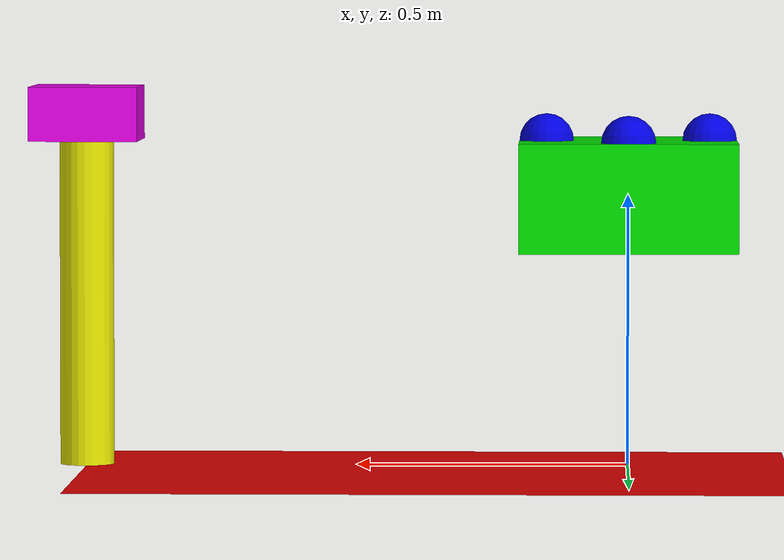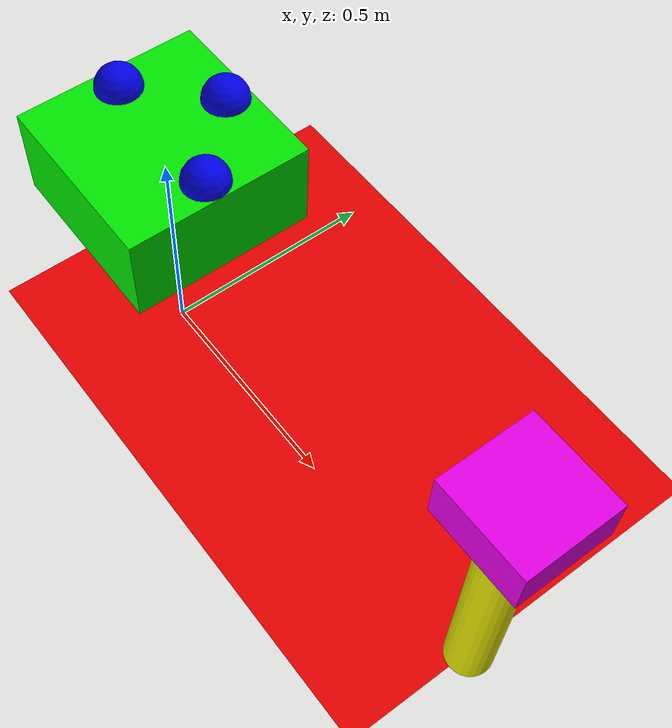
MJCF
<mujoco model="geom_tf_example">
  <compiler angle="radian"/>

  <option timestep="0.001" integrator="Euler"/>

  <extension>
    <plugin plugin="MujocoRosUtils::GeomTfPublisher">
    </plugin>
  </extension>

  <worldbody>
    <light diffuse=".5 .5 .5" pos="0 0 3" dir="0 0 -1"/>
    <geom type="plane" size="1 1 0.1" rgba=".9 0 0 1"/>

    <!-- Example body with multiple geoms -->
    <body name="robot_base" pos="0 0 0.5">
      <!-- Multiple geoms attached to this body -->
      <geom name="base_link" type="box" size="0.2 0.2 0.1" rgba="0 .9 0 1" pos="0 0 0"/>
      <geom name="sensor_1" type="sphere" size="0.05" rgba="0 0 .9 1" pos="0.15 0 0.1"/>
      <geom name="sensor_2" type="sphere" size="0.05" rgba="0 0 .9 1" pos="-0.15 0 0.1"/>
      <geom name="sensor_3" type="sphere" size="0.05" rgba="0 0 .9 1" pos="0 0.15 0.1"/>

      <freejoint/>

      <!-- Plugin instance to publish TF frames for all geoms under robot_base -->
      <plugin plugin="MujocoRosUtils::GeomTfPublisher">
        <config key="parent_body" value="robot_base"/>
        <config key="frame_id" value="world"/>
        <config key="topic_name" value="/robot/geom_tf"/>
        <config key="publish_rate" value="50.0"/>
        <config key="publish_bodies" value="true"/>
      </plugin>
    </body>

    <!-- Another example body -->
    <body name="manipulator" pos="1 0 0.3">
      <geom name="arm_link" type="cylinder" size="0.05 0.3" rgba=".9 .9 0 1" pos="0 0 0"/>
      <geom name="end_effector" type="box" size="0.1 0.1 0.05" rgba=".9 0 .9 1" pos="0 0 0.35"/>

      <freejoint/>

      <!-- Separate plugin instance for manipulator geoms -->
      <plugin plugin="MujocoRosUtils::GeomTfPublisher">
        <config key="parent_body" value="manipulator"/>
        <config key="frame_id" value="world"/>
        <config key="topic_name" value="/manipulator/geom_tf"/>
        <config key="publish_rate" value="30.0"/>
      </plugin>
    </body>
  </worldbody>
</mujoco>
